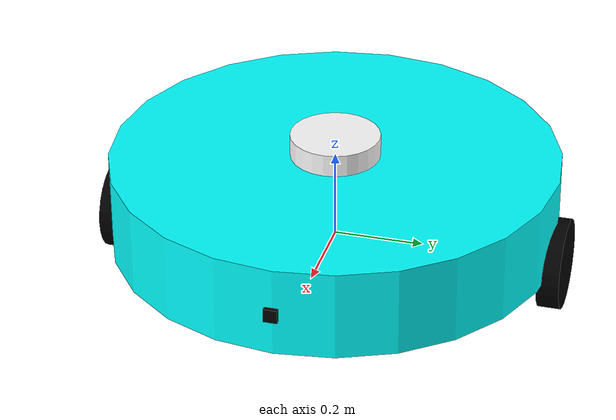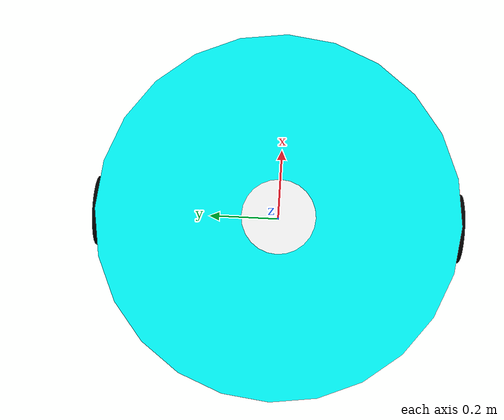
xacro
<?xml version="1.0"?>
<robot xmlns:xacro="http://www.ros.org/wiki/xacro"  name="robot">

    <xacro:include filename="robot_core.xacro"/>
    <xacro:include filename="gazebo_control.xacro"/>
    <xacro:include filename="lidar.xacro"/>
    <!-- can not have both camera and depth_camera at the same time -->
    <xacro:include filename="depth_camera.xacro"/>

</robot>

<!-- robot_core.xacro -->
<robot xmlns:xacro="http://www.ros.org/wiki/xacro">
    <xacro:include filename="$(find my_bot)/description/inertial_macros.xacro"/>

    <material name="white">
        <color rgba="1 1 1 1" />
    </material>

    <material name="orange">
        <color rgba="1 0.3 0.1 1"/>
    </material>

    <material name="blue">
        <color rgba="0.2 0.2 1 1"/>
    </material>

    <material name="black">
        <color rgba="0 0 0 1"/>
    </material>

    <material name="red">
        <color rgba="1 0 0 1"/>
    </material>

    <material name="gray">
        <color rgba="0.6 0.6 0.6 1"/>
    </material>

    <material name="dark_gray">
        <color rgba="0.3 0.3 0.3 1"/>
    </material>

    <material name="light_gray">
        <color rgba="0.8 0.8 0.8 1"/>
    </material>

    <material name="yellow">
        <color rgba="1 1 0 1"/>
    </material>

    <material name="green">
        <color rgba="0 1 0 1"/>
    </material>

    <material name="cyan">
        <color rgba="0 1 1 1"/>
    </material>

    <material name="magenta">
        <color rgba="1 0 1 1"/>
    </material>

    <material name="transparent_red">
        <color rgba="1 0 0 0.4"/>
    </material>

    <material name="transparent_blue">
        <color rgba="0 0 1 0.4"/>
    </material>

    <material name="transparent_green">
        <color rgba="0 1 0 0.4"/>
    </material>

    <material name="transparent_gray">
        <color rgba="0.5 0.5 0.5 0.4"/>
    </material>

    <!-- base link-->

    <link name="base_link">

    </link>

    <!-- chassis link -->

    <joint name="chassis_joint" type="fixed">
        <parent link="base_link"/>
        <child link="chassis_link"/>
        <origin xyz="0 0 0" rpy="0 0 0"/>
    </joint>

    <link name="chassis_link">
        <visual>
            <origin xyz="0 0 0.1" rpy="0 0 0"/>
            <geometry>
                <cylinder radius="0.5" length="0.2"/>
            </geometry>
            <material name="cyan"/>
        </visual>
        <collision>
            <origin xyz="0 0 0.1" rpy="0 0 0"/>
            <geometry>
                <cylinder radius="0.5" length="0.2"/>
            </geometry>
            <material name="cyan"/>
        </collision>
        <xacro:inertial_cylinder mass="5" length="0.2" radius="0.5">
            <origin xyz="0 0 0.1" rpy="0 0 0"/>
        </xacro:inertial_cylinder>
    </link>

    <gazebo reference="chassis_link">
        <material>Gazebo/White</material>
    </gazebo>

    <!-- left wheel link-->
    <joint name="left_wheel_joint" type="continuous">
        <parent link="base_link"/>
        <child link="left_wheel_link"/>
        <origin xyz="0 0.5 0" rpy="-${pi/2} 0 0"/>
        <axis xyz="0 0 1"/>
    </joint>

    <link name="left_wheel_link">
        <visual>
            <geometry>
                <cylinder radius="0.1" length="0.05"/>
            </geometry>
            <material name="black"/>
        </visual>
        <collision>
            <geometry>
                <cylinder radius="0.1" length="0.05"/>
            </geometry>
            <material name="black"/>
        </collision>
        <xacro:inertial_cylinder mass="1" length="0.05" radius="0.1">
            <origin xyz="0 0 0" rpy="0 0 0"/>
        </xacro:inertial_cylinder>
    </link>

    <gazebo reference="left_wheel_link">
        <material>Gazebo/Black</material>
    </gazebo>

    <gazebo reference="left_wheel_link">
        <mu1>1.0</mu1>
        <mu2>1.0</mu2>
    </gazebo>

    <gazebo reference="right_wheel_link">
        <mu1>1.0</mu1>
        <mu2>1.0</mu2>
    </gazebo>

    <!-- right wheel link-->
    <joint name="right_wheel_joint" type="continuous">
        <parent link="base_link"/>
        <child link="right_wheel_link"/>
        <origin xyz="0 -0.5 0" rpy="${pi/2} 0 0"/>
        <axis xyz="0 0 1"/>
    </joint>

    <link name="right_wheel_link">
        <visual>
            <geometry>
                <cylinder radius="0.1" length="0.05"/>
            </geometry>
            <material name="black"/>
        </visual>
        <collision>
            <geometry>
                <cylinder radius="0.1" length="0.05"/>
            </geometry>
            <material name="black"/>
        </collision>
        <xacro:inertial_cylinder mass="1" length="0.05" radius="0.1">
            <origin xyz="0 0 0" rpy="0 0 0"/>
        </xacro:inertial_cylinder>
    </link>

    <gazebo reference="right_wheel_link">
        <material>Gazebo/Black</material>
    </gazebo>

    <!--caster wheel limk-->
    <joint name="back_caster_wheel_joint" type="fixed">
        <parent link="base_link"/>
        <child link="back_caster_wheel_link"/>
        <origin xyz="-0.3 0 0" rpy="0 0 0"/>
    </joint>
    <link name="back_caster_wheel_link">
        <visual>
            <geometry>
                <sphere radius="0.1"/>
            </geometry>
            <material name="black"/>
        </visual>
        <collision>
            <geometry>
                <sphere radius="0.1"/>
            </geometry>
            <material name="black"/>
        </collision>
        <xacro:inertial_sphere mass="0.5" radius="0.1">
            <origin xyz="0 0 0" rpy="0 0 0"/>
        </xacro:inertial_sphere>
    </link>

    <gazebo reference="back_caster_wheel_link">
        <material>Gazebo/Black</material>
    </gazebo>

    <joint name="front_caster_wheel_joint" type="fixed">
        <parent link="base_link"/>
        <child link="front_caster_wheel_link"/>
        <origin xyz="0.3 0 0" rpy="0 0 0"/>
    </joint>
    <link name="front_caster_wheel_link">
        <visual>
            <geometry>
                <sphere radius="0.1"/>
            </geometry>
            <material name="black"/>
        </visual>
        <collision>
            <geometry>
                <sphere radius="0.1"/>
            </geometry>
            <material name="black"/>
        </collision>
        <xacro:inertial_sphere mass="0.5" radius="0.1">
            <origin xyz="0 0 0" rpy="0 0 0"/>
        </xacro:inertial_sphere>
    </link>

    <gazebo reference="front_caster_wheel_link">
        <material>Gazebo/Black</material>
    </gazebo>

    <gazebo reference="front_caster_wheel_link">
        <mu1>0.01</mu1>
        <mu2>0.01</mu2>
    </gazebo>

    <gazebo reference="back_caster_wheel_link">
        <mu1>0.01</mu1>
        <mu2>0.01</mu2>
    </gazebo>

</robot>

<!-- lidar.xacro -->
<robot xmlns:xacro="http://www.ros.org/wiki/xacro"  name="robot">

    <joint name="laser_joint" type="fixed">
        <parent link="chassis_link"/>
        <child link="laser_frame"/>
        <origin xyz="0 0 0.2" rpy="0 0 0"/>
    </joint>

    <link name="laser_frame">
        <visual>
            <origin xyz="0 0 0" rpy="0 0 0"/>
            <geometry>
                <cylinder radius="0.1" length="0.1"/>
            </geometry>
            <material name="white"/>
        </visual>
        <collision>
            <origin xyz="0 0 0" rpy="0 0 0"/>
            <geometry>
                <cylinder radius="0.05" length="0.1"/>
            </geometry>
        </collision>
        <xacro:inertial_cylinder mass="0.5" length="0.1" radius="0.05">
            <origin xyz="0 0 0" rpy="0 0 0"/>
        </xacro:inertial_cylinder>
    </link>

    <gazebo reference="laser_frame">
        <material>Gazebo/Black</material>
        <sensor type="ray" name="laser">
            <pose>0 0 0 0 0 0</pose>
            <visualize>true</visualize>
            <update_rate>30.0</update_rate>
            <ray>
                <scan>
                    <horizontal>
                        <samples>360</samples>
                        <min_angle>-3.14</min_angle>
                        <max_angle>3.14</max_angle>
                    </horizontal>
                </scan>
                <range>
                    <min>0.6</min>
                    <max>12.0</max>
                </range>
            </ray>
            <plugin name="laser_controller" filename="libgazebo_ros_ray_sensor.so">
                <ros>
                    <argument>~/out:=scan</argument>
                </ros>
                <output_type>sensor_msgs/LaserScan</output_type>
                <frame_name>laser_frame</frame_name>
            </plugin>
        </sensor>
    </gazebo>

</robot>

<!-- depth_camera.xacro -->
<robot xmlns:xacro="http://www.ros.org/wiki/xacro"  name="robot">

    <joint name="camera_joint" type="fixed">
        <parent link="chassis_link"/>
        <child link="camera_frame"/>
        <origin xyz="0.51 0 0.1" rpy="0 0 0"/>
    </joint>

    <link name="camera_frame">
        <visual>
            <origin xyz="0 0 0" rpy="0 0 0"/>
            <geometry>
                <box size="0.01 0.03 0.03"/>
            </geometry>
            <material name="black"/>
        </visual>
    </link>

    <joint name="camera_optical_joint" type="fixed">
        <parent link="chassis_link"/>
        <child link="camera_optical_frame"/>
        <origin xyz="0 0 0 " rpy="${-pi/2} 0 ${-pi/2}"/>
    </joint>

    <link name="camera_optical_frame">
    </link>

    <gazebo reference="camera_frame">
        <material>Gazebo/Black</material>
        <sensor type="camera" name="depth">
            <pose>0 0 0 0 0 0</pose>
            <visualize>true</visualize>
            <update_rate>30.0</update_rate>
            <camera>
                <horizontal_fov>1.089</horizontal_fov>
                <image>
                    <width>640</width>
                    <height>480</height>
                    <format>R8G8B8</format>
                </image>
                <clip>
                    <near>0.1</near>
                    <far>100</far>
                </clip>
            </camera>
            <plugin name="camera_controller" filename="libgazebo_ros_camera.so">
            </plugin>
        </sensor>
    </gazebo>

</robot>
